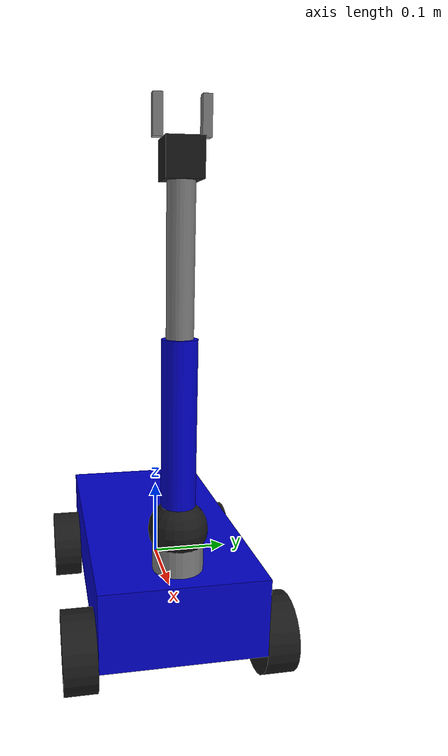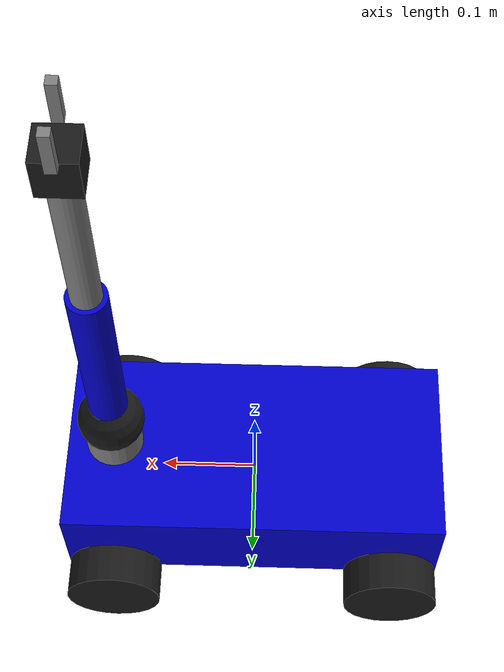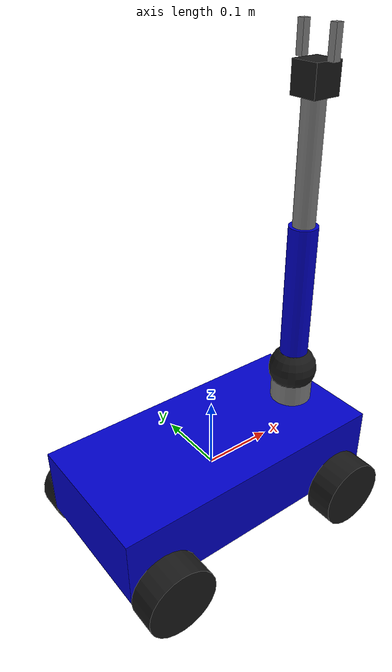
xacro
<?xml version="1.0"?>
<robot name="four_wheeled_robot" xmlns:xacro="http://www.ros.org/wiki/xacro">

  <!-- ============ CHASSIS ============ -->
  <link name="base_link">
    <visual>
      <origin xyz="0 0 0" rpy="0 0 0"/>
      <geometry>
        <box size="0.4 0.2 0.1"/>
      </geometry>
      <material name="blue">
        <color rgba="0 0 0.8 1"/>
      </material>
    </visual>
    <collision>
      <geometry>
        <box size="0.4 0.2 0.1"/>
      </geometry>
    </collision>
    <inertial>
      <mass value="5.0"/>
      <inertia ixx="0.0208" ixy="0" ixz="0"
               iyy="0.0708" iyz="0"
               izz="0.0833"/>
    </inertial>
  </link>

  <!-- ============ WHEEL MACRO-LIKE BLOCKS ============ -->
  <!-- Each wheel: cylinder rolling about the Y axis -->

  <!-- FRONT LEFT -->
  <link name="front_left_wheel">
    <visual>
      <origin xyz="0 0 0" rpy="1.5708 0 0"/>
      <geometry><cylinder radius="0.05" length="0.04"/></geometry>
      <material name="black"><color rgba="0.1 0.1 0.1 1"/></material>
    </visual>
    <collision>
      <origin xyz="0 0 0" rpy="1.5708 0 0"/>
      <geometry><cylinder radius="0.05" length="0.04"/></geometry>
    </collision>
    <inertial>
      <mass value="0.5"/>
      <inertia ixx="0.000379" ixy="0" ixz="0"
               iyy="0.000625" iyz="0"
               izz="0.000379"/>
    </inertial>
  </link>
  <joint name="front_left_wheel_joint" type="continuous">
    <parent link="base_link"/>
    <child link="front_left_wheel"/>
    <origin xyz="0.15 0.12 -0.05" rpy="0 0 0"/>
    <axis xyz="0 1 0"/>
  </joint>

  <!-- FRONT RIGHT -->
  <link name="front_right_wheel">
    <visual>
      <origin xyz="0 0 0" rpy="1.5708 0 0"/>
      <geometry><cylinder radius="0.05" length="0.04"/></geometry>
      <material name="black"/>
    </visual>
    <collision>
      <origin xyz="0 0 0" rpy="1.5708 0 0"/>
      <geometry><cylinder radius="0.05" length="0.04"/></geometry>
    </collision>
    <inertial>
      <mass value="0.5"/>
      <inertia ixx="0.000379" ixy="0" ixz="0"
               iyy="0.000625" iyz="0"
               izz="0.000379"/>
    </inertial>
  </link>
  <joint name="front_right_wheel_joint" type="continuous">
    <parent link="base_link"/>
    <child link="front_right_wheel"/>
    <origin xyz="0.15 -0.12 -0.05" rpy="0 0 0"/>
    <axis xyz="0 1 0"/>
  </joint>

  <!-- REAR LEFT -->
  <link name="rear_left_wheel">
    <visual>
      <origin xyz="0 0 0" rpy="1.5708 0 0"/>
      <geometry><cylinder radius="0.05" length="0.04"/></geometry>
      <material name="black"/>
    </visual>
    <collision>
      <origin xyz="0 0 0" rpy="1.5708 0 0"/>
      <geometry><cylinder radius="0.05" length="0.04"/></geometry>
    </collision>
    <inertial>
      <mass value="0.5"/>
      <inertia ixx="0.000379" ixy="0" ixz="0"
               iyy="0.000625" iyz="0"
               izz="0.000379"/>
    </inertial>
  </link>
  <joint name="rear_left_wheel_joint" type="continuous">
    <parent link="base_link"/>
    <child link="rear_left_wheel"/>
    <origin xyz="-0.15 0.12 -0.05" rpy="0 0 0"/>
    <axis xyz="0 1 0"/>
  </joint>

  <!-- REAR RIGHT -->
  <link name="rear_right_wheel">
    <visual>
      <origin xyz="0 0 0" rpy="1.5708 0 0"/>
      <geometry><cylinder radius="0.05" length="0.04"/></geometry>
      <material name="black"/>
    </visual>
    <collision>
      <origin xyz="0 0 0" rpy="1.5708 0 0"/>
      <geometry><cylinder radius="0.05" length="0.04"/></geometry>
    </collision>
    <inertial>
      <mass value="0.5"/>
      <inertia ixx="0.000379" ixy="0" ixz="0"
               iyy="0.000625" iyz="0"
               izz="0.000379"/>
    </inertial>
  </link>
  <joint name="rear_right_wheel_joint" type="continuous">
    <parent link="base_link"/>
    <child link="rear_right_wheel"/>
    <origin xyz="-0.15 -0.12 -0.05" rpy="0 0 0"/>
    <axis xyz="0 1 0"/>
  </joint>

  <!-- ============ GAZEBO MATERIALS & FRICTION ============ -->
  <gazebo reference="base_link">
    <material>Gazebo/Blue</material>
  </gazebo>

  <gazebo reference="front_left_wheel">
    <material>Gazebo/Black</material>
    <mu1>1.0</mu1>
    <mu2>0.5</mu2>
    <fdir1>1 0 0</fdir1>
  </gazebo>
  <gazebo reference="front_right_wheel">
    <material>Gazebo/Black</material>
    <mu1>1.0</mu1>
    <mu2>0.5</mu2>
    <fdir1>1 0 0</fdir1>
  </gazebo>
  <gazebo reference="rear_left_wheel">
    <material>Gazebo/Black</material>
    <mu1>1.0</mu1>
    <mu2>0.5</mu2>
    <fdir1>1 0 0</fdir1>
  </gazebo>
  <gazebo reference="rear_right_wheel">
    <material>Gazebo/Black</material>
    <mu1>1.0</mu1>
    <mu2>0.5</mu2>
    <fdir1>1 0 0</fdir1>
  </gazebo>

  <link name="arm_base_link">
    <visual>
      <origin xyz="0 0 0.025" rpy="0 0 0"/>
      <geometry><cylinder radius="0.03" length="0.05"/></geometry>
      <material name="grey"><color rgba="0.5 0.5 0.5 1"/></material>
    </visual>
    <collision>
      <origin xyz="0 0 0.025" rpy="0 0 0"/>
      <geometry><cylinder radius="0.03" length="0.05"/></geometry>
    </collision>
    <inertial>
      <mass value="0.2"/>
      <inertia ixx="0.0001" ixy="0" ixz="0" iyy="0.0001" iyz="0" izz="0.0001"/>
    </inertial>
  </link>
  <joint name="arm_base_joint" type="fixed">
    <parent link="base_link"/>
    <child link="arm_base_link"/>
    <origin xyz="0.15 0 0.05" rpy="0 0 0"/> </joint>

  <link name="shoulder_link">
    <visual>
      <origin xyz="0 0 0" rpy="0 0 0"/>
      <geometry><sphere radius="0.035"/></geometry>
      <material name="black"/>
    </visual>
    <collision>
      <geometry><sphere radius="0.035"/></geometry>
    </collision>
    <inertial>
      <mass value="0.2"/>
      <inertia ixx="0.0001" ixy="0" ixz="0" iyy="0.0001" iyz="0" izz="0.0001"/>
    </inertial>
  </link>
  <joint name="shoulder_yaw_joint" type="continuous">
    <parent link="arm_base_link"/>
    <child link="shoulder_link"/>
    <origin xyz="0 0 0.05" rpy="0 0 0"/>
    <axis xyz="0 0 1"/>
    <limit effort="15.0" velocity="2.0"/>
  </joint>

  <link name="upper_arm_link">
    <visual>
      <origin xyz="0 0 0.1" rpy="0 0 0"/>
      <geometry><cylinder radius="0.02" length="0.2"/></geometry>
      <material name="blue"/>
    </visual>
    <collision>
      <origin xyz="0 0 0.1" rpy="0 0 0"/>
      <geometry><cylinder radius="0.02" length="0.2"/></geometry>
    </collision>
    <inertial>
      <mass value="0.3"/>
      <inertia ixx="0.001" ixy="0" ixz="0" iyy="0.001" iyz="0" izz="0.0001"/>
    </inertial>
  </link>
  <joint name="shoulder_pitch_joint" type="revolute">
    <parent link="shoulder_link"/>
    <child link="upper_arm_link"/>
    <origin xyz="0 0 0.02" rpy="0 0 0"/>
    <axis xyz="0 1 0"/>
    <limit lower="-1.5708" upper="1.5708" effort="15.0" velocity="10.0"/>
    <dynamics damping="0.1" friction="0.02"/>
  </joint>

  <link name="forearm_link">
    <visual>
      <origin xyz="0 0 0.08" rpy="0 0 0"/>
      <geometry><cylinder radius="0.015" length="0.16"/></geometry>
      <material name="grey"/>
    </visual>
    <collision>
      <origin xyz="0 0 0.08" rpy="0 0 0"/>
      <geometry><cylinder radius="0.015" length="0.16"/></geometry>
    </collision>
    <inertial>
      <mass value="0.2"/>
      <inertia ixx="0.0005" ixy="0" ixz="0" iyy="0.0005" iyz="0" izz="0.0001"/>
    </inertial>
  </link>
  <joint name="elbow_joint" type="revolute">
    <parent link="upper_arm_link"/>
    <child link="forearm_link"/>
    <origin xyz="0 0 0.2" rpy="0 0 0"/>
    <axis xyz="0 1 0"/>
    <limit lower="-2.0" upper="2.0" effort="15.0" velocity="10.0"/>
    <dynamics damping="0.1" friction="0.02"/>
  </joint>

  <link name="wrist_link">
    <visual>
      <origin xyz="0 0 0.02" rpy="0 0 0"/>
      <geometry><box size="0.04 0.04 0.04"/></geometry>
      <material name="black"/>
    </visual>
    <collision>
      <origin xyz="0 0 0.02" rpy="0 0 0"/>
      <geometry><box size="0.04 0.04 0.04"/></geometry>
    </collision>
    <inertial>
      <mass value="0.1"/>
      <inertia ixx="0.0001" ixy="0" ixz="0" iyy="0.0001" iyz="0" izz="0.0001"/>
    </inertial>
  </link>
  <joint name="wrist_joint" type="revolute">
    <parent link="forearm_link"/>
    <child link="wrist_link"/>
    <origin xyz="0 0 0.16" rpy="0 0 0"/>
    <axis xyz="0 1 0"/>
    <limit lower="-2.0" upper="2.0" effort="15.0" velocity="10.0"/>
    <dynamics damping="0.1" friction="0.02"/>
  </joint>

  <link name="gripper_left_link">
    <visual>
      <origin xyz="0 0.025 0.02" rpy="0 0 0"/>
      <geometry><box size="0.01 0.01 0.04"/></geometry>
      <material name="grey"/>
    </visual>
    <collision>
      <origin xyz="0 0.025 0.02" rpy="0 0 0"/>
      <geometry><box size="0.01 0.01 0.04"/></geometry>
    </collision>
    <inertial>
      <mass value="0.02"/>
      <inertia ixx="0.00001" ixy="0" ixz="0" iyy="0.00001" iyz="0" izz="0.00001"/>
    </inertial>
  </link>
  <joint name="gripper_left_joint" type="prismatic">
    <parent link="wrist_link"/>
    <child link="gripper_left_link"/>
    <origin xyz="0 0 0.04" rpy="0 0 0"/>
    <axis xyz="0 1 0"/>
    <limit lower="-0.02" upper="0.0" effort="5.0" velocity="0.5"/>
    <dynamics damping="0.05" friction="0.01"/>
  </joint>

  <link name="gripper_right_link">
    <visual>
      <origin xyz="0 -0.025 0.02" rpy="0 0 0"/>
      <geometry><box size="0.01 0.01 0.04"/></geometry>
      <material name="grey"/>
    </visual>
    <collision>
      <origin xyz="0 -0.025 0.02" rpy="0 0 0"/>
      <geometry><box size="0.01 0.01 0.04"/></geometry>
    </collision>
    <inertial>
      <mass value="0.02"/>
      <inertia ixx="0.00001" ixy="0" ixz="0" iyy="0.00001" iyz="0" izz="0.00001"/>
    </inertial>
  </link>
  <joint name="gripper_right_joint" type="prismatic">
    <parent link="wrist_link"/>
    <child link="gripper_right_link"/>
    <origin xyz="0 0 0.04" rpy="0 0 0"/>
    <axis xyz="0 -1 0"/>
    <limit lower="-0.02" upper="0.0" effort="5.0" velocity="0.5"/>
    <dynamics damping="0.05" friction="0.01"/>
  </joint>

  <gazebo reference="gripper_left_link">
    <material>Gazebo/Grey</material>
    <mu1>10.0</mu1>
    <mu2>10.0</mu2>
    <kp>1000000.0</kp>
    <kd>1.0</kd>
    <minDepth>0.001</minDepth>
    <maxVel>0.0</maxVel>
  </gazebo>

  <gazebo reference="gripper_right_link">
    <material>Gazebo/Grey</material>
    <mu1>10.0</mu1>
    <mu2>10.0</mu2>
    <kp>1000000.0</kp>
    <kd>1.0</kd>
    <minDepth>0.001</minDepth>
    <maxVel>0.0</maxVel>
  </gazebo>

  <gazebo reference="base_link"><material>Gazebo/Blue</material></gazebo>
  <gazebo reference="front_left_wheel"><material>Gazebo/Black</material><mu1>1.0</mu1><mu2>0.3</mu2></gazebo>
  <gazebo reference="front_right_wheel"><material>Gazebo/Black</material><mu1>1.0</mu1><mu2>0.3</mu2></gazebo>
  <gazebo reference="rear_left_wheel"><material>Gazebo/Black</material><mu1>1.0</mu1><mu2>0.3</mu2></gazebo>
  <gazebo reference="rear_right_wheel"><material>Gazebo/Black</material><mu1>1.0</mu1><mu2>0.3</mu2></gazebo>

  <gazebo reference="arm_base_link"><material>Gazebo/Grey</material></gazebo>
  <gazebo reference="shoulder_link"><material>Gazebo/Black</material></gazebo>
  <gazebo reference="upper_arm_link"><material>Gazebo/Blue</material></gazebo>
  <gazebo reference="forearm_link"><material>Gazebo/Grey</material></gazebo>
  <gazebo reference="wrist_link"><material>Gazebo/Black</material></gazebo>
  <gazebo reference="gripper_left_link"><material>Gazebo/Grey</material></gazebo>
  <gazebo reference="gripper_right_link"><material>Gazebo/Grey</material></gazebo>

  <!-- ============ DIFFERENTIAL DRIVE PLUGIN (4-wheel skid steer) ============ -->
  <gazebo>
    <plugin name="diff_drive" filename="libgazebo_ros_diff_drive.so">
      <ros>
        <namespace>/</namespace>
      </ros>

      <update_rate>30</update_rate>
      <num_wheel_pairs>2</num_wheel_pairs>

      <!-- pair 1: front wheels -->
      <left_joint>front_left_wheel_joint</left_joint>
      <right_joint>front_right_wheel_joint</right_joint>
      <!-- pair 2: rear wheels -->
      <left_joint>rear_left_wheel_joint</left_joint>
      <right_joint>rear_right_wheel_joint</right_joint>

      <!-- separations (one per pair) -->
      <wheel_separation>0.24</wheel_separation>
      <wheel_separation>0.24</wheel_separation>
      <!-- diameters (one per pair) -->
      <wheel_diameter>0.1</wheel_diameter>
      <wheel_diameter>0.1</wheel_diameter>

      <max_wheel_torque>20</max_wheel_torque>
      <max_wheel_acceleration>5.0</max_wheel_acceleration>

      <command_topic>cmd_vel</command_topic>
      <publish_odom>true</publish_odom>
      <publish_odom_tf>true</publish_odom_tf>
      <publish_wheel_tf>true</publish_wheel_tf>
      <odometry_topic>odom</odometry_topic>
      <odometry_frame>odom</odometry_frame>
      <robot_base_frame>base_link</robot_base_frame>
    </plugin>
  </gazebo>

  <ros2_control name="GazeboSystem" type="system">
    <hardware>
      <plugin>gazebo_ros2_control/GazeboSystem</plugin>
    </hardware>

    <joint name="shoulder_yaw_joint">
      <command_interface name="position">
        <param name="min">-3.1416</param>
        <param name="max">3.1416</param>
      </command_interface>
      <state_interface name="position"/>
      <state_interface name="velocity"/>
    </joint>

    <joint name="shoulder_pitch_joint">
      <command_interface name="position">
        <param name="min">-1.5708</param>
        <param name="max">1.5708</param>
      </command_interface>
      <state_interface name="position"/>
      <state_interface name="velocity"/>
    </joint>

    <joint name="elbow_joint">
      <command_interface name="position">
        <param name="min">-2.0</param>
        <param name="max">2.0</param>
      </command_interface>
      <state_interface name="position"/>
      <state_interface name="velocity"/>
    </joint>

    <joint name="wrist_joint">
      <command_interface name="position">
        <param name="min">-3.1416</param>
        <param name="max">3.1416</param>
      </command_interface>
      <state_interface name="position"/>
      <state_interface name="velocity"/>
    </joint>

    <joint name="gripper_left_joint">
      <command_interface name="position">
        <param name="min">-0.02</param>
        <param name="max">0.0</param>
      </command_interface>
      <state_interface name="position"/>
      <state_interface name="velocity"/>
    </joint>

    <joint name="gripper_right_joint">
      <command_interface name="position">
        <param name="min">-0.02</param>
        <param name="max">0.0</param>
      </command_interface>
      <state_interface name="position"/>
      <state_interface name="velocity"/>
    </joint>
  </ros2_control>

  <gazebo>
    <plugin name="gazebo_ros2_control" filename="libgazebo_ros2_control.so">
      <parameters>$(find four_wheeled_robot_1)/config/controllers.yaml</parameters>
    </plugin>
  </gazebo>

  <gazebo reference="gripper_left_link">
    <material>Gazebo/Grey</material>
    <mu1>5.0</mu1><mu2>5.0</mu2>
    <kp>1000000.0</kp><kd>1.0</kd>
    <minDepth>0.001</minDepth><maxVel>0.1</maxVel>
  </gazebo>

</robot>
